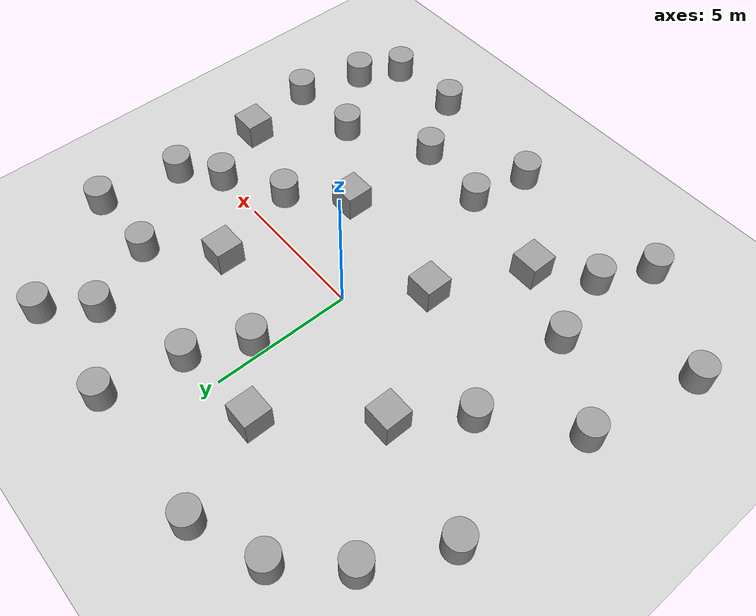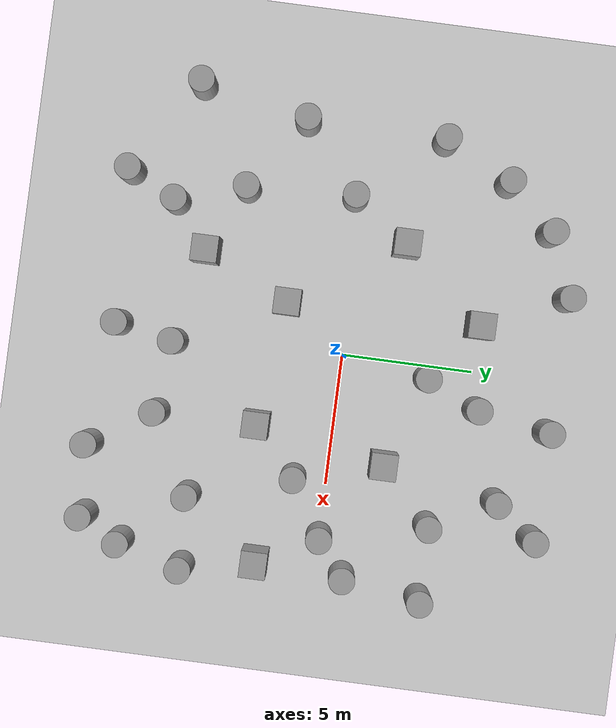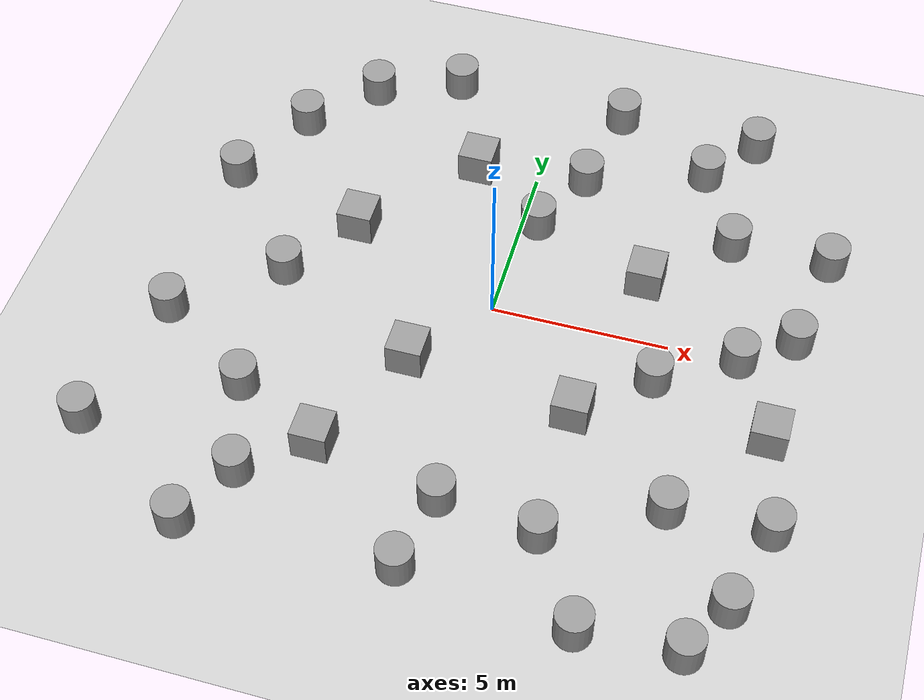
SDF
<sdf version="1.7">
 <world name="default">
  <light name="sun" type="directional">
   <pose>0 0 10 0 -0 0</pose>
   <diffuse>0.8 0.8 0.8 1</diffuse>
   <specular>0.1 0.1 0.1 1</specular>
   <attenuation>
    <range>1000</range>
    <constant>0.9</constant>
    <linear>0.01</linear>
    <quadratic>0.001</quadratic>
   </attenuation>
   <direction>-0.5 0.5 -1</direction>
   <spot><inner_angle>0</inner_angle><outer_angle>0</outer_angle><falloff>0</falloff></spot>
  </light>
  <model name="ground_plane">
   <static>1</static>
   <link name="link">
    <collision name="collision">
     <geometry><plane><normal>0 0 1</normal><size>100 100</size></plane></geometry>
     <surface><friction><ode><mu>100</mu><mu2>50</mu2></ode></friction></surface>
    </collision>
    <visual name="visual">
     <cast_shadows>0</cast_shadows>
     <geometry><plane><normal>0 0 1</normal><size>100 100</size></plane></geometry>
     <material>
      <script><uri>file://media/materials/scripts/gazebo.material</uri><name>Gazebo/Grey</name></script>
     </material>
    </visual>
   </link>
  </model>
  <gravity>0 0 -9.8</gravity>
  <magnetic_field>6e-06 2.3e-05 -4.2e-05</magnetic_field>
  <atmosphere type="adiabatic"/>
  <physics name="default_physics" default="0" type="ode">
   <max_step_size>0.001</max_step_size>
   <real_time_factor>1</real_time_factor>
   <real_time_update_rate>1000</real_time_update_rate>
  </physics>
  <scene><ambient>0.4 0.4 0.4 1</ambient><background>0.7 0.7 0.7 1</background><shadows>1</shadows></scene>
  <spherical_coordinates>
   <surface_model>EARTH_WGS84</surface_model>
   <latitude_deg>0</latitude_deg>
   <longitude_deg>0</longitude_deg>
   <elevation>0</elevation>
   <heading_deg>0</heading_deg>
  </spherical_coordinates>
  <audio><device>default</device></audio>
  <light name="user_point_light_0" type="point">
   <pose>0.181612 0.894722 1 0 -0 0</pose>
   <diffuse>0.5 0.5 0.5 1</diffuse>
   <specular>0.1 0.1 0.1 1</specular>
   <attenuation>
    <range>20</range>
    <constant>0.5</constant>
    <linear>0.01</linear>
    <quadratic>0.001</quadratic>
   </attenuation>
   <cast_shadows>0</cast_shadows>
   <direction>0 0 -1</direction>
  </light>
  <model name="unit_box">
   <pose>-1.72866 -2.31818 0.5 -0 -0 -0</pose>
   <link name="link">
    <inertial>
     <mass>1</mass>
     <inertia>
      <ixx>0.166667</ixx>
      <ixy>0</ixy>
      <ixz>0</ixz>
      <iyy>0.166667</iyy>
      <iyz>0</iyz>
      <izz>0.166667</izz>
     </inertia>
    </inertial>
    <collision name="collision"><geometry><box><size>1 1 1</size></box></geometry></collision>
    <visual name="visual">
     <geometry><box><size>1 1 1</size></box></geometry>
     <material>
      <script><name>Gazebo/Grey</name><uri>file://media/materials/scripts/gazebo.material</uri></script>
     </material>
    </visual>
   </link>
  </model>
  <model name="unit_box_0">
   <pose>-4.48993 1.86389 0.5 0 -0 0</pose>
   <link name="link">
    <inertial>
     <mass>1</mass>
     <inertia>
      <ixx>0.166667</ixx>
      <ixy>0</ixy>
      <ixz>0</ixz>
      <iyy>0.166667</iyy>
      <iyz>0</iyz>
      <izz>0.166667</izz>
     </inertia>
    </inertial>
    <collision name="collision"><geometry><box><size>1 1 1</size></box></geometry></collision>
    <visual name="visual">
     <geometry><box><size>1 1 1</size></box></geometry>
     <material>
      <script><name>Gazebo/Grey</name><uri>file://media/materials/scripts/gazebo.material</uri></script>
     </material>
    </visual>
   </link>
  </model>
  <model name="unit_box_1">
   <pose>2.99676 -2.89988 0.5 -0 -0 -0</pose>
   <link name="link">
    <inertial>
     <mass>1</mass>
     <inertia>
      <ixx>0.166667</ixx>
      <ixy>0</ixy>
      <ixz>0</ixz>
      <iyy>0.166667</iyy>
      <iyz>0</iyz>
      <izz>0.166667</izz>
     </inertia>
    </inertial>
    <collision name="collision"><geometry><box><size>1 1 1</size></box></geometry></collision>
    <visual name="visual">
     <geometry><box><size>1 1 1</size></box></geometry>
     <material>
      <script><name>Gazebo/Grey</name><uri>file://media/materials/scripts/gazebo.material</uri></script>
     </material>
    </visual>
   </link>
  </model>
  <model name="unit_box_2">
   <pose>3.90972 2.05063 0.5 0 -0 0</pose>
   <link name="link">
    <inertial>
     <mass>1</mass>
     <inertia>
      <ixx>0.166667</ixx>
      <ixy>0</ixy>
      <ixz>0</ixz>
      <iyy>0.166667</iyy>
      <iyz>0</iyz>
      <izz>0.166667</izz>
     </inertia>
    </inertial>
    <collision name="collision"><geometry><box><size>1 1 1</size></box></geometry></collision>
    <visual name="visual">
     <geometry><box><size>1 1 1</size></box></geometry>
     <material>
      <script><name>Gazebo/Grey</name><uri>file://media/materials/scripts/gazebo.material</uri></script>
     </material>
    </visual>
   </link>
  </model>
  <model name="unit_box_3">
   <pose>-1.78104 4.9995 0.5 -0 -0 -0</pose>
   <link name="link">
    <inertial>
     <mass>1</mass>
     <inertia>
      <ixx>0.166667</ixx>
      <ixy>0</ixy>
      <ixz>0</ixz>
      <iyy>0.166667</iyy>
      <iyz>0</iyz>
      <izz>0.166667</izz>
     </inertia>
    </inertial>
    <collision name="collision"><geometry><box><size>1 1 1</size></box></geometry></collision>
    <visual name="visual">
     <geometry><box><size>1 1 1</size></box></geometry>
     <material>
      <script><name>Gazebo/Grey</name><uri>file://media/materials/scripts/gazebo.material</uri></script>
     </material>
    </visual>
   </link>
  </model>
  <model name="unit_box_4">
   <pose>8.15751 -2.29194 0.5 0 -0 0</pose>
   <link name="link">
    <inertial>
     <mass>1</mass>
     <inertia>
      <ixx>0.166667</ixx>
      <ixy>0</ixy>
      <ixz>0</ixz>
      <iyy>0.166667</iyy>
      <iyz>0</iyz>
      <izz>0.166667</izz>
     </inertia>
    </inertial>
    <collision name="collision"><geometry><box><size>1 1 1</size></box></geometry></collision>
    <visual name="visual">
     <geometry><box><size>1 1 1</size></box></geometry>
     <material>
      <script><name>Gazebo/Grey</name><uri>file://media/materials/scripts/gazebo.material</uri></script>
     </material>
    </visual>
   </link>
  </model>
  <model name="unit_cylinder">
   <pose>0.292184 -6.41366 0.499998 3e-06 -4e-06 0</pose>
   <link name="link">
    <inertial>
     <mass>1</mass>
     <inertia><ixx>0.145833</ixx><ixy>0</ixy><ixz>0</ixz><iyy>0.145833</iyy><iyz>0</iyz><izz>0.125</izz></inertia>
    </inertial>
    <collision name="collision">
     <geometry><cylinder><radius>0.5</radius><length>1</length></cylinder></geometry>
    </collision>
    <visual name="visual">
     <geometry><cylinder><radius>0.5</radius><length>1</length></cylinder></geometry>
     <material>
      <script><name>Gazebo/Grey</name><uri>file://media/materials/scripts/gazebo.material</uri></script>
     </material>
    </visual>
   </link>
  </model>
  <model name="unit_cylinder_0">
   <pose>-5.80821 -4.38014 0.499998 3e-06 -4e-06 0</pose>
   <link name="link">
    <inertial>
     <mass>1</mass>
     <inertia><ixx>0.145833</ixx><ixy>0</ixy><ixz>0</ixz><iyy>0.145833</iyy><iyz>0</iyz><izz>0.125</izz></inertia>
    </inertial>
    <collision name="collision">
     <geometry><cylinder><radius>0.5</radius><length>1</length></cylinder></geometry>
    </collision>
    <visual name="visual">
     <geometry><cylinder><radius>0.5</radius><length>1</length></cylinder></geometry>
     <material>
      <script><name>Gazebo/Grey</name><uri>file://media/materials/scripts/gazebo.material</uri></script>
     </material>
    </visual>
   </link>
  </model>
  <model name="unit_cylinder_0_clone">
   <pose>-5.99892 -0.281844 0.499998 3e-06 -4e-06 0</pose>
   <link name="link">
    <inertial>
     <mass>1</mass>
     <inertia><ixx>0.145833</ixx><ixy>0</ixy><ixz>0</ixz><iyy>0.145833</iyy><iyz>0</iyz><izz>0.125</izz></inertia>
    </inertial>
    <collision name="collision">
     <geometry><cylinder><radius>0.5</radius><length>1</length></cylinder></geometry>
    </collision>
    <visual name="visual">
     <geometry><cylinder><radius>0.5</radius><length>1</length></cylinder></geometry>
     <material>
      <script><name>Gazebo/Grey</name><uri>file://media/materials/scripts/gazebo.material</uri></script>
     </material>
    </visual>
   </link>
  </model>
  <model name="unit_cylinder_0_clone_0">
   <pose>-7.27964 5.41697 0.499998 3e-06 -4e-06 0</pose>
   <link name="link">
    <inertial>
     <mass>1</mass>
     <inertia><ixx>0.145833</ixx><ixy>0</ixy><ixz>0</ixz><iyy>0.145833</iyy><iyz>0</iyz><izz>0.125</izz></inertia>
    </inertial>
    <collision name="collision">
     <geometry><cylinder><radius>0.5</radius><length>1</length></cylinder></geometry>
    </collision>
    <visual name="visual">
     <geometry><cylinder><radius>0.5</radius><length>1</length></cylinder></geometry>
     <material>
      <script><name>Gazebo/Grey</name><uri>file://media/materials/scripts/gazebo.material</uri></script>
     </material>
    </visual>
   </link>
  </model>
  <model name="unit_cylinder_0_clone_1">
   <pose>1.3993 5.30931 0.499992 -3e-06 4e-06 0</pose>
   <link name="link">
    <inertial>
     <mass>1</mass>
     <inertia><ixx>0.145833</ixx><ixy>0</ixy><ixz>0</ixz><iyy>0.145833</iyy><iyz>0</iyz><izz>0.125</izz></inertia>
    </inertial>
    <collision name="collision">
     <geometry><cylinder><radius>0.5</radius><length>1</length></cylinder></geometry>
    </collision>
    <visual name="visual">
     <geometry><cylinder><radius>0.5</radius><length>1</length></cylinder></geometry>
     <material>
      <script><name>Gazebo/Grey</name><uri>file://media/materials/scripts/gazebo.material</uri></script>
     </material>
    </visual>
   </link>
  </model>
  <model name="unit_cylinder_0_clone_2">
   <pose>8.31232 1.05074 0.499992 -3e-06 4e-06 0</pose>
   <link name="link">
    <inertial>
     <mass>1</mass>
     <inertia><ixx>0.145833</ixx><ixy>0</ixy><ixz>0</ixz><iyy>0.145833</iyy><iyz>0</iyz><izz>0.125</izz></inertia>
    </inertial>
    <collision name="collision">
     <geometry><cylinder><radius>0.5</radius><length>1</length></cylinder></geometry>
    </collision>
    <visual name="visual">
     <geometry><cylinder><radius>0.5</radius><length>1</length></cylinder></geometry>
     <material>
      <script><name>Gazebo/Grey</name><uri>file://media/materials/scripts/gazebo.material</uri></script>
     </material>
    </visual>
   </link>
  </model>
  <model name="unit_cylinder_0_clone_3">
   <pose>6.00793 -5.15984 0.499992 -3e-06 4e-06 0</pose>
   <link name="link">
    <inertial>
     <mass>1</mass>
     <inertia><ixx>0.145833</ixx><ixy>0</ixy><ixz>0</ixz><iyy>0.145833</iyy><iyz>0</iyz><izz>0.125</izz></inertia>
    </inertial>
    <collision name="collision">
     <geometry><cylinder><radius>0.5</radius><length>1</length></cylinder></geometry>
    </collision>
    <visual name="visual">
     <geometry><cylinder><radius>0.5</radius><length>1</length></cylinder></geometry>
     <material>
      <script><name>Gazebo/Grey</name><uri>file://media/materials/scripts/gazebo.material</uri></script>
     </material>
    </visual>
   </link>
  </model>
  <model name="unit_cylinder_0_clone_4">
   <pose>4.83052 -1.25555 0.499998 3e-06 -4e-06 0</pose>
   <link name="link">
    <inertial>
     <mass>1</mass>
     <inertia><ixx>0.145833</ixx><ixy>0</ixy><ixz>0</ixz><iyy>0.145833</iyy><iyz>0</iyz><izz>0.125</izz></inertia>
    </inertial>
    <collision name="collision">
     <geometry><cylinder><radius>0.5</radius><length>1</length></cylinder></geometry>
    </collision>
    <visual name="visual">
     <geometry><cylinder><radius>0.5</radius><length>1</length></cylinder></geometry>
     <material>
      <script><name>Gazebo/Grey</name><uri>file://media/materials/scripts/gazebo.material</uri></script>
     </material>
    </visual>
   </link>
  </model>
  <model name="unit_cylinder_0_clone_5">
   <pose>3.03308 -6.74649 0.499992 -3e-06 4e-06 0</pose>
   <link name="link">
    <inertial>
     <mass>1</mass>
     <inertia><ixx>0.145833</ixx><ixy>0</ixy><ixz>0</ixz><iyy>0.145833</iyy><iyz>0</iyz><izz>0.125</izz></inertia>
    </inertial>
    <collision name="collision">
     <geometry><cylinder><radius>0.5</radius><length>1</length></cylinder></geometry>
    </collision>
    <visual name="visual">
     <geometry><cylinder><radius>0.5</radius><length>1</length></cylinder></geometry>
     <material>
      <script><name>Gazebo/Grey</name><uri>file://media/materials/scripts/gazebo.material</uri></script>
     </material>
    </visual>
   </link>
  </model>
  <model name="unit_cylinder_0_clone_6">
   <pose>-5 -7 0.499992 -3e-06 4e-06 0</pose>
   <link name="link">
    <inertial>
     <mass>1</mass>
     <inertia><ixx>0.145833</ixx><ixy>0</ixy><ixz>0</ixz><iyy>0.145833</iyy><iyz>0</iyz><izz>0.125</izz></inertia>
    </inertial>
    <collision name="collision">
     <geometry><cylinder><radius>0.5</radius><length>1</length></cylinder></geometry>
    </collision>
    <visual name="visual">
     <geometry><cylinder><radius>0.5</radius><length>1</length></cylinder></geometry>
     <material>
      <script><name>Gazebo/Grey</name><uri>file://media/materials/scripts/gazebo.material</uri></script>
     </material>
    </visual>
   </link>
  </model>
  <model name="unit_cylinder_0_clone_7">
   <pose>-9.504 -6.54311 0.499998 4e-06 -4e-06 0</pose>
   <link name="link">
    <inertial>
     <mass>1</mass>
     <inertia><ixx>0.145833</ixx><ixy>0</ixy><ixz>0</ixz><iyy>0.145833</iyy><iyz>0</iyz><izz>0.125</izz></inertia>
    </inertial>
    <collision name="collision">
     <geometry><cylinder><radius>0.5</radius><length>1</length></cylinder></geometry>
    </collision>
    <visual name="visual">
     <geometry><cylinder><radius>0.5</radius><length>1</length></cylinder></geometry>
     <material>
      <script><name>Gazebo/Grey</name><uri>file://media/materials/scripts/gazebo.material</uri></script>
     </material>
    </visual>
   </link>
  </model>
  <model name="unit_cylinder_0_clone_8">
   <pose>-8.63344 -2.43738 0.499992 -3e-06 -4e-06 -0</pose>
   <link name="link">
    <inertial>
     <mass>1</mass>
     <inertia><ixx>0.145833</ixx><ixy>0</ixy><ixz>0</ixz><iyy>0.145833</iyy><iyz>0</iyz><izz>0.125</izz></inertia>
    </inertial>
    <collision name="collision">
     <geometry><cylinder><radius>0.5</radius><length>1</length></cylinder></geometry>
    </collision>
    <visual name="visual">
     <geometry><cylinder><radius>0.5</radius><length>1</length></cylinder></geometry>
     <material>
      <script><name>Gazebo/Grey</name><uri>file://media/materials/scripts/gazebo.material</uri></script>
     </material>
    </visual>
   </link>
  </model>
  <model name="unit_cylinder_0_clone_9">
   <pose>-8.56094 2.84419 0.499992 -3e-06 4e-06 0</pose>
   <link name="link">
    <inertial>
     <mass>1</mass>
     <inertia><ixx>0.145833</ixx><ixy>0</ixy><ixz>0</ixz><iyy>0.145833</iyy><iyz>0</iyz><izz>0.125</izz></inertia>
    </inertial>
    <collision name="collision">
     <geometry><cylinder><radius>0.5</radius><length>1</length></cylinder></geometry>
    </collision>
    <visual name="visual">
     <geometry><cylinder><radius>0.5</radius><length>1</length></cylinder></geometry>
     <material>
      <script><name>Gazebo/Grey</name><uri>file://media/materials/scripts/gazebo.material</uri></script>
     </material>
    </visual>
   </link>
  </model>
  <model name="unit_cylinder_0_clone_10">
   <pose>-5.60431 7.23891 0.499992 -3e-06 -4e-06 -0</pose>
   <link name="link">
    <inertial>
     <mass>1</mass>
     <inertia><ixx>0.145833</ixx><ixy>0</ixy><ixz>0</ixz><iyy>0.145833</iyy><iyz>0</iyz><izz>0.125</izz></inertia>
    </inertial>
    <collision name="collision">
     <geometry><cylinder><radius>0.5</radius><length>1</length></cylinder></geometry>
    </collision>
    <visual name="visual">
     <geometry><cylinder><radius>0.5</radius><length>1</length></cylinder></geometry>
     <material>
      <script><name>Gazebo/Grey</name><uri>file://media/materials/scripts/gazebo.material</uri></script>
     </material>
    </visual>
   </link>
  </model>
  <model name="unit_cylinder_0_clone_11">
   <pose>4.77218 6.4542 0.499993 -3e-06 -3e-06 0</pose>
   <link name="link">
    <inertial>
     <mass>1</mass>
     <inertia><ixx>0.145833</ixx><ixy>0</ixy><ixz>0</ixz><iyy>0.145833</iyy><iyz>0</iyz><izz>0.125</izz></inertia>
    </inertial>
    <collision name="collision">
     <geometry><cylinder><radius>0.5</radius><length>1</length></cylinder></geometry>
    </collision>
    <visual name="visual">
     <geometry><cylinder><radius>0.5</radius><length>1</length></cylinder></geometry>
     <material>
      <script><name>Gazebo/Grey</name><uri>file://media/materials/scripts/gazebo.material</uri></script>
     </material>
    </visual>
   </link>
  </model>
  <model name="unit_cylinder_0_clone_12">
   <pose>8.79004 4.0282 0.499993 -3e-06 -3e-06 0</pose>
   <link name="link">
    <inertial>
     <mass>1</mass>
     <inertia><ixx>0.145833</ixx><ixy>0</ixy><ixz>0</ixz><iyy>0.145833</iyy><iyz>0</iyz><izz>0.125</izz></inertia>
    </inertial>
    <collision name="collision">
     <geometry><cylinder><radius>0.5</radius><length>1</length></cylinder></geometry>
    </collision>
    <visual name="visual">
     <geometry><cylinder><radius>0.5</radius><length>1</length></cylinder></geometry>
     <material>
      <script><name>Gazebo/Grey</name><uri>file://media/materials/scripts/gazebo.material</uri></script>
     </material>
    </visual>
   </link>
  </model>
  <model name="unit_cylinder_0_clone_13">
   <pose>8.71679 -5.05774 0.499997 3e-06 3e-06 0</pose>
   <link name="link">
    <inertial>
     <mass>1</mass>
     <inertia><ixx>0.145833</ixx><ixy>0</ixy><ixz>0</ixz><iyy>0.145833</iyy><iyz>0</iyz><izz>0.125</izz></inertia>
    </inertial>
    <collision name="collision">
     <geometry><cylinder><radius>0.5</radius><length>1</length></cylinder></geometry>
    </collision>
    <visual name="visual">
     <geometry><cylinder><radius>0.5</radius><length>1</length></cylinder></geometry>
     <material>
      <script><name>Gazebo/Grey</name><uri>file://media/materials/scripts/gazebo.material</uri></script>
     </material>
    </visual>
   </link>
  </model>
  <model name="unit_cylinder_0_clone_14">
   <pose>7.24401 -8.97722 0.499992 -3e-06 -4e-06 -0</pose>
   <link name="link">
    <inertial>
     <mass>1</mass>
     <inertia><ixx>0.145833</ixx><ixy>0</ixy><ixz>0</ixz><iyy>0.145833</iyy><iyz>0</iyz><izz>0.125</izz></inertia>
    </inertial>
    <collision name="collision">
     <geometry><cylinder><radius>0.5</radius><length>1</length></cylinder></geometry>
    </collision>
    <visual name="visual">
     <geometry><cylinder><radius>0.5</radius><length>1</length></cylinder></geometry>
     <material>
      <script><name>Gazebo/Grey</name><uri>file://media/materials/scripts/gazebo.material</uri></script>
     </material>
    </visual>
   </link>
  </model>
  <model name="unit_cylinder_0_clone_15">
   <pose>4.53898 -9.1252 0.499993 -3e-06 -3e-06 0</pose>
   <link name="link">
    <inertial>
     <mass>1</mass>
     <inertia><ixx>0.145833</ixx><ixy>0</ixy><ixz>0</ixz><iyy>0.145833</iyy><iyz>0</iyz><izz>0.125</izz></inertia>
    </inertial>
    <collision name="collision">
     <geometry><cylinder><radius>0.5</radius><length>1</length></cylinder></geometry>
    </collision>
    <visual name="visual">
     <geometry><cylinder><radius>0.5</radius><length>1</length></cylinder></geometry>
     <material>
      <script><name>Gazebo/Grey</name><uri>file://media/materials/scripts/gazebo.material</uri></script>
     </material>
    </visual>
   </link>
  </model>
  <model name="unit_cylinder_0_clone_16">
   <pose>-0.134609 -8.59712 0.499997 3e-06 3e-06 0</pose>
   <link name="link">
    <inertial>
     <mass>1</mass>
     <inertia><ixx>0.145833</ixx><ixy>0</ixy><ixz>0</ixz><iyy>0.145833</iyy><iyz>0</iyz><izz>0.125</izz></inertia>
    </inertial>
    <collision name="collision">
     <geometry><cylinder><radius>0.5</radius><length>1</length></cylinder></geometry>
    </collision>
    <visual name="visual">
     <geometry><cylinder><radius>0.5</radius><length>1</length></cylinder></geometry>
     <material>
      <script><name>Gazebo/Grey</name><uri>file://media/materials/scripts/gazebo.material</uri></script>
     </material>
    </visual>
   </link>
  </model>
  <model name="unit_cylinder_0_clone_17">
   <pose>-5.92467 -8.83671 0.499993 -3e-06 -4e-06 -0</pose>
   <link name="link">
    <inertial>
     <mass>1</mass>
     <inertia><ixx>0.145833</ixx><ixy>0</ixy><ixz>0</ixz><iyy>0.145833</iyy><iyz>0</iyz><izz>0.125</izz></inertia>
    </inertial>
    <collision name="collision">
     <geometry><cylinder><radius>0.5</radius><length>1</length></cylinder></geometry>
    </collision>
    <visual name="visual">
     <geometry><cylinder><radius>0.5</radius><length>1</length></cylinder></geometry>
     <material>
      <script><name>Gazebo/Grey</name><uri>file://media/materials/scripts/gazebo.material</uri></script>
     </material>
    </visual>
   </link>
  </model>
  <model name="unit_box_5">
   <pose>-3.28393 -5.61903 0.5 -0 -0 -0</pose>
   <link name="link">
    <inertial>
     <mass>1</mass>
     <inertia>
      <ixx>0.166667</ixx>
      <ixy>0</ixy>
      <ixz>0</ixz>
      <iyy>0.166667</iyy>
      <iyz>0</iyz>
      <izz>0.166667</izz>
     </inertia>
    </inertial>
    <collision name="collision"><geometry><box><size>1 1 1</size></box></geometry></collision>
    <visual name="visual">
     <geometry><box><size>1 1 1</size></box></geometry>
     <material>
      <script><name>Gazebo/Grey</name><uri>file://media/materials/scripts/gazebo.material</uri></script>
     </material>
    </visual>
   </link>
  </model>
  <model name="unit_cylinder_0_clone_18">
   <pose>0.464749 3.29024 0.499997 3e-06 4e-06 -0</pose>
   <link name="link">
    <inertial>
     <mass>1</mass>
     <inertia><ixx>0.145833</ixx><ixy>0</ixy><ixz>0</ixz><iyy>0.145833</iyy><iyz>0</iyz><izz>0.125</izz></inertia>
    </inertial>
    <collision name="collision">
     <geometry><cylinder><radius>0.5</radius><length>1</length></cylinder></geometry>
    </collision>
    <visual name="visual">
     <geometry><cylinder><radius>0.5</radius><length>1</length></cylinder></geometry>
     <material>
      <script><name>Gazebo/Grey</name><uri>file://media/materials/scripts/gazebo.material</uri></script>
     </material>
    </visual>
   </link>
  </model>
  <model name="unit_cylinder_0_clone_19">
   <pose>-3.2231 8.19087 0.499997 3e-06 4e-06 -0</pose>
   <link name="link">
    <inertial>
     <mass>1</mass>
     <inertia><ixx>0.145833</ixx><ixy>0</ixy><ixz>0</ixz><iyy>0.145833</iyy><iyz>0</iyz><izz>0.125</izz></inertia>
    </inertial>
    <collision name="collision">
     <geometry><cylinder><radius>0.5</radius><length>1</length></cylinder></geometry>
    </collision>
    <visual name="visual">
     <geometry><cylinder><radius>0.5</radius><length>1</length></cylinder></geometry>
     <material>
      <script><name>Gazebo/Grey</name><uri>file://media/materials/scripts/gazebo.material</uri></script>
     </material>
    </visual>
   </link>
  </model>
  <model name="unit_cylinder_0_clone_20">
   <pose>1.90071 8.08524 0.499998 3e-06 -4e-06 0</pose>
   <link name="link">
    <inertial>
     <mass>1</mass>
     <inertia><ixx>0.145833</ixx><ixy>0</ixy><ixz>0</ixz><iyy>0.145833</iyy><iyz>0</iyz><izz>0.125</izz></inertia>
    </inertial>
    <collision name="collision">
     <geometry><cylinder><radius>0.5</radius><length>1</length></cylinder></geometry>
    </collision>
    <visual name="visual">
     <geometry><cylinder><radius>0.5</radius><length>1</length></cylinder></geometry>
     <material>
      <script><name>Gazebo/Grey</name><uri>file://media/materials/scripts/gazebo.material</uri></script>
     </material>
    </visual>
   </link>
  </model>
  <model name="unit_cylinder_0_clone_21">
   <pose>6 8 0.499997 3e-06 4e-06 -0</pose>
   <link name="link">
    <inertial>
     <mass>1</mass>
     <inertia><ixx>0.145833</ixx><ixy>0</ixy><ixz>0</ixz><iyy>0.145833</iyy><iyz>0</iyz><izz>0.125</izz></inertia>
    </inertial>
    <collision name="collision">
     <geometry><cylinder><radius>0.5</radius><length>1</length></cylinder></geometry>
    </collision>
    <visual name="visual">
     <geometry><cylinder><radius>0.5</radius><length>1</length></cylinder></geometry>
     <material>
      <script><name>Gazebo/Grey</name><uri>file://media/materials/scripts/gazebo.material</uri></script>
     </material>
    </visual>
   </link>
  </model>
  <model name="unit_cylinder_0_clone_22">
   <pose>6 4 0.499998 3e-06 -4e-06 0</pose>
   <link name="link">
    <inertial>
     <mass>1</mass>
     <inertia><ixx>0.145833</ixx><ixy>0</ixy><ixz>0</ixz><iyy>0.145833</iyy><iyz>0</iyz><izz>0.125</izz></inertia>
    </inertial>
    <collision name="collision">
     <geometry><cylinder><radius>0.5</radius><length>1</length></cylinder></geometry>
    </collision>
    <visual name="visual">
     <geometry><cylinder><radius>0.5</radius><length>1</length></cylinder></geometry>
     <material>
      <script><name>Gazebo/Grey</name><uri>file://media/materials/scripts/gazebo.material</uri></script>
     </material>
    </visual>
   </link>
  </model>
  <model name="unit_cylinder_0_clone_23">
   <pose>6.93957 0.006785 0.499992 -3e-06 4e-06 0</pose>
   <link name="link">
    <inertial>
     <mass>1</mass>
     <inertia><ixx>0.145833</ixx><ixy>0</ixy><ixz>0</ixz><iyy>0.145833</iyy><iyz>0</iyz><izz>0.125</izz></inertia>
    </inertial>
    <collision name="collision">
     <geometry><cylinder><radius>0.5</radius><length>1</length></cylinder></geometry>
    </collision>
    <visual name="visual">
     <geometry><cylinder><radius>0.5</radius><length>1</length></cylinder></geometry>
     <material>
      <script><name>Gazebo/Grey</name><uri>file://media/materials/scripts/gazebo.material</uri></script>
     </material>
    </visual>
   </link>
  </model>
  <model name="unit_cylinder_0_clone_24">
   <pose>8.06189 -7.47655 0.499998 3e-06 -4e-06 0</pose>
   <link name="link">
    <inertial>
     <mass>1</mass>
     <inertia><ixx>0.145833</ixx><ixy>0</ixy><ixz>0</ixz><iyy>0.145833</iyy><iyz>0</iyz><izz>0.125</izz></inertia>
    </inertial>
    <collision name="collision">
     <geometry><cylinder><radius>0.5</radius><length>1</length></cylinder></geometry>
    </collision>
    <visual name="visual">
     <geometry><cylinder><radius>0.5</radius><length>1</length></cylinder></geometry>
     <material>
      <script><name>Gazebo/Grey</name><uri>file://media/materials/scripts/gazebo.material</uri></script>
     </material>
    </visual>
   </link>
  </model>
 </world>
</sdf>
